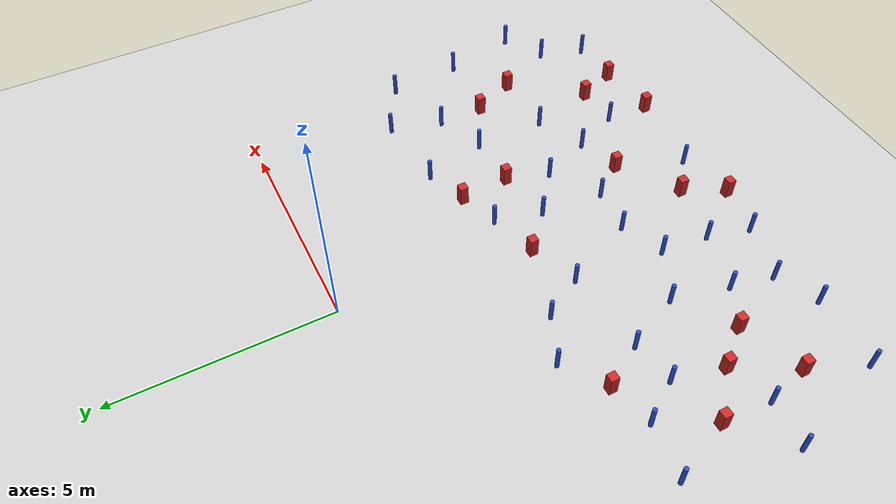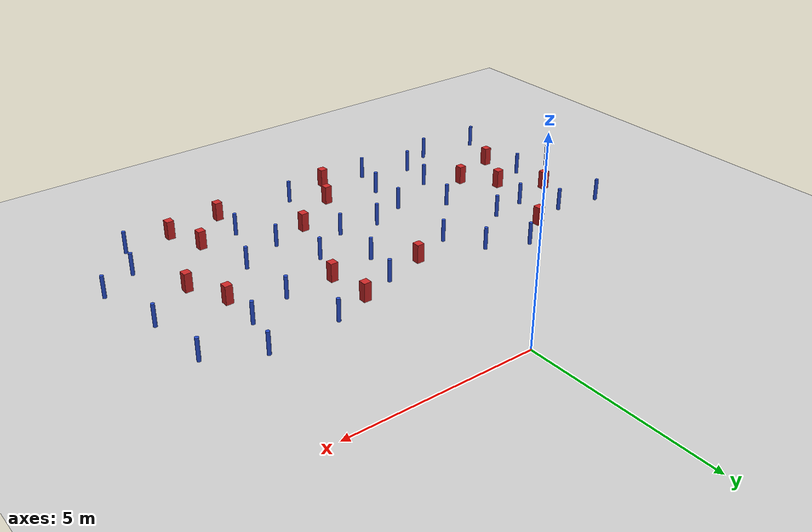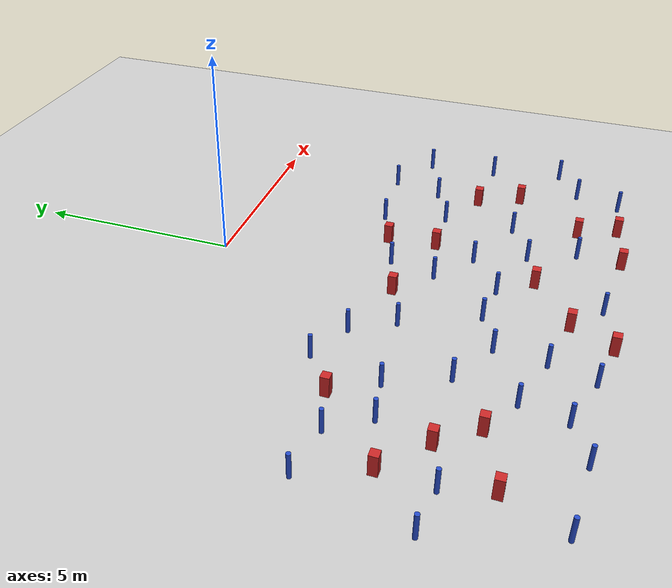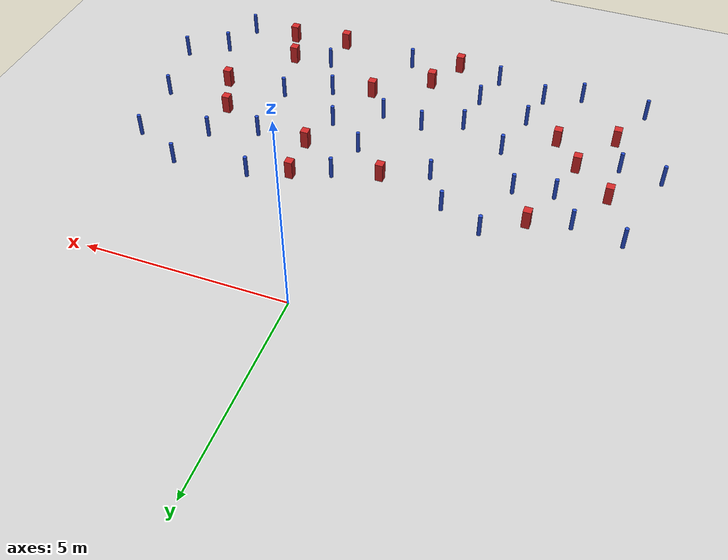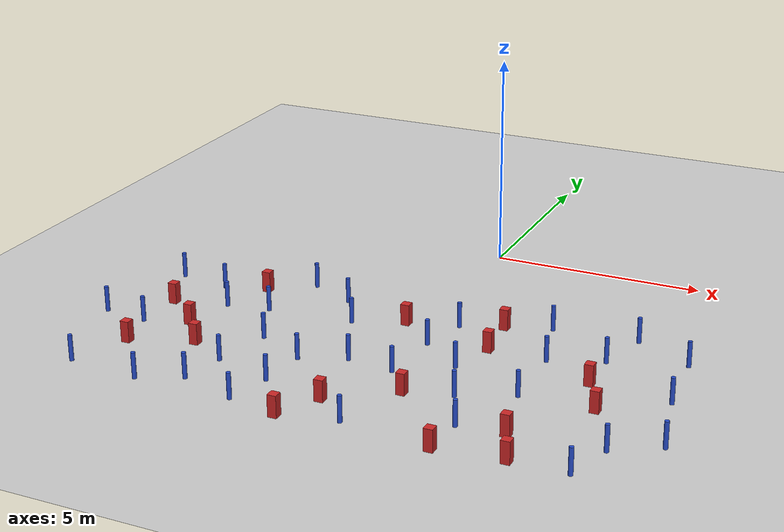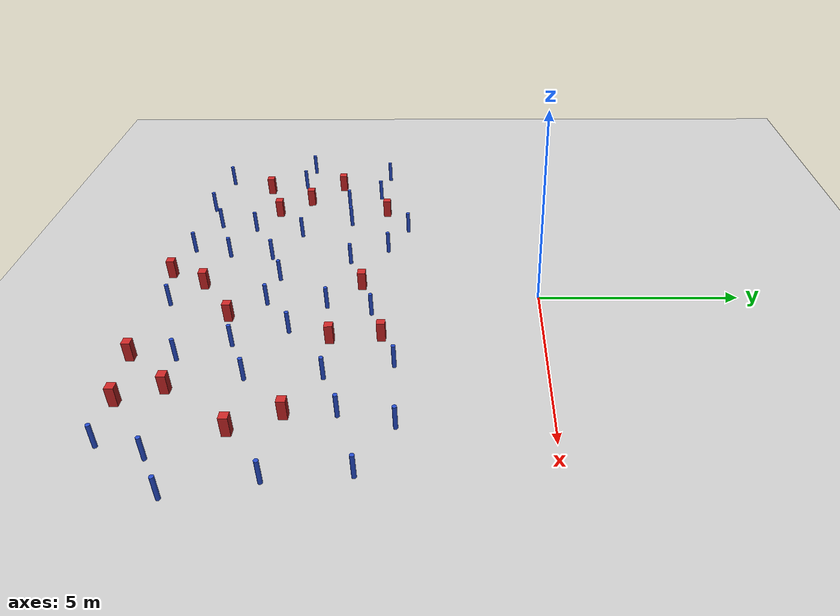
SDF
<sdf version="1.6">
 <world name="default">
  <model name="ground_plane">
   <static>1</static>
   <link name="link">
    <collision name="collision">
     <geometry><plane><normal>0 0 1</normal><size>100 100</size></plane></geometry>
     <surface><friction><ode><mu>100</mu><mu2>50</mu2></ode></friction></surface>
    </collision>
    <visual name="visual">
     <cast_shadows>0</cast_shadows>
     <geometry><plane><normal>0 0 1</normal><size>100 100</size></plane></geometry>
     <material>
      <ambient>1 1 1 1</ambient>
      <diffuse>0.8 0.8 0.8 1</diffuse>
      <specular>0.01 0.01 0.01 1</specular>
     </material>
    </visual>
   </link>
  </model>
  <model name="pole_obstacle0">
   <static>0</static>
   <link name="link">
    <pose>0 0 0.3 0 -0 0</pose>
    <inertial>
     <mass>1</mass>
     <inertia><ixx>0.145833</ixx><ixy>0</ixy><ixz>0</ixz><iyy>0.145833</iyy><iyz>0</iyz><izz>0.125</izz></inertia>
    </inertial>
    <collision name="collision">
     <geometry><cylinder><radius>0.05</radius><length>0.6</length></cylinder></geometry>
    </collision>
    <visual name="visual">
     <geometry><cylinder><radius>0.05</radius><length>0.6</length></cylinder></geometry>
     <material>
      <script><name>Gazebo/Blue</name><uri>file://media/materials/scripts/gazebo.material</uri></script>
     </material>
    </visual>
   </link>
   <pose>-0.847177 -6.63387 -7e-06 0 -0 1e-05</pose>
  </model>
  <model name="pole_obstacle1">
   <static>0</static>
   <link name="link">
    <pose>0 0 0.3 0 -0 0</pose>
    <inertial>
     <mass>1</mass>
     <inertia><ixx>0.145833</ixx><ixy>0</ixy><ixz>0</ixz><iyy>0.145833</iyy><iyz>0</iyz><izz>0.125</izz></inertia>
    </inertial>
    <collision name="collision">
     <geometry><cylinder><radius>0.05</radius><length>0.6</length></cylinder></geometry>
    </collision>
    <visual name="visual">
     <geometry><cylinder><radius>0.05</radius><length>0.6</length></cylinder></geometry>
     <material>
      <script><name>Gazebo/Blue</name><uri>file://media/materials/scripts/gazebo.material</uri></script>
     </material>
    </visual>
   </link>
   <pose>5.36775 -8.12371 -6e-06 0 -0 3e-06</pose>
  </model>
  <model name="square_post_obstacle3">
   <static>0</static>
   <link name="link">
    <pose>0 0 0.25 0 -0 0</pose>
    <inertial>
     <mass>100</mass>
     <inertia>
      <ixx>0.166667</ixx>
      <ixy>0</ixy>
      <ixz>0</ixz>
      <iyy>0.166667</iyy>
      <iyz>0</iyz>
      <izz>0.166667</izz>
     </inertia>
    </inertial>
    <collision name="collision"><geometry><box><size>0.2 0.2 0.5</size></box></geometry></collision>
    <visual name="visual">
     <geometry><box><size>0.2 0.2 0.5</size></box></geometry>
     <material>
      <script><name>Gazebo/Red</name><uri>file://media/materials/scripts/gazebo.material</uri></script>
     </material>
    </visual>
   </link>
   <pose>-5.67275 -7.77645 0 -5e-06 -0 0.000241</pose>
  </model>
  <model name="pole_obstacle3">
   <static>0</static>
   <link name="link">
    <pose>0 0 0.3 0 -0 0</pose>
    <inertial>
     <mass>1</mass>
     <inertia><ixx>0.145833</ixx><ixy>0</ixy><ixz>0</ixz><iyy>0.145833</iyy><iyz>0</iyz><izz>0.125</izz></inertia>
    </inertial>
    <collision name="collision">
     <geometry><cylinder><radius>0.05</radius><length>0.6</length></cylinder></geometry>
    </collision>
    <visual name="visual">
     <geometry><cylinder><radius>0.05</radius><length>0.6</length></cylinder></geometry>
     <material>
      <script><name>Gazebo/Blue</name><uri>file://media/materials/scripts/gazebo.material</uri></script>
     </material>
    </visual>
   </link>
   <pose>-4.64776 -5.25846 -1e-06 -0 -1e-06 7e-06</pose>
  </model>
  <model name="square_post_obstacle4">
   <static>0</static>
   <link name="link">
    <pose>0 0 0.25 0 -0 0</pose>
    <inertial>
     <mass>100</mass>
     <inertia>
      <ixx>0.166667</ixx>
      <ixy>0</ixy>
      <ixz>0</ixz>
      <iyy>0.166667</iyy>
      <iyz>0</iyz>
      <izz>0.166667</izz>
     </inertia>
    </inertial>
    <collision name="collision"><geometry><box><size>0.2 0.2 0.5</size></box></geometry></collision>
    <visual name="visual">
     <geometry><box><size>0.2 0.2 0.5</size></box></geometry>
     <material>
      <script><name>Gazebo/Red</name><uri>file://media/materials/scripts/gazebo.material</uri></script>
     </material>
    </visual>
   </link>
   <pose>-4.25915 -7.26195 0 -5e-06 -0 0.000241</pose>
  </model>
  <model name="square_post_obstacle6">
   <static>0</static>
   <link name="link">
    <pose>0 0 0.25 0 -0 0</pose>
    <inertial>
     <mass>100</mass>
     <inertia>
      <ixx>0.166667</ixx>
      <ixy>0</ixy>
      <ixz>0</ixz>
      <iyy>0.166667</iyy>
      <iyz>0</iyz>
      <izz>0.166667</izz>
     </inertia>
    </inertial>
    <collision name="collision"><geometry><box><size>0.2 0.2 0.5</size></box></geometry></collision>
    <visual name="visual">
     <geometry><box><size>0.2 0.2 0.5</size></box></geometry>
     <material>
      <script><name>Gazebo/Red</name><uri>file://media/materials/scripts/gazebo.material</uri></script>
     </material>
    </visual>
   </link>
   <pose>3.40714 -8.30701 0 -5e-06 -0 0.000241</pose>
  </model>
  <model name="square_post_obstacle7">
   <static>0</static>
   <link name="link">
    <pose>0 0 0.25 0 -0 0</pose>
    <inertial>
     <mass>100</mass>
     <inertia>
      <ixx>0.166667</ixx>
      <ixy>0</ixy>
      <ixz>0</ixz>
      <iyy>0.166667</iyy>
      <iyz>0</iyz>
      <izz>0.166667</izz>
     </inertia>
    </inertial>
    <collision name="collision"><geometry><box><size>0.2 0.2 0.5</size></box></geometry></collision>
    <visual name="visual">
     <geometry><box><size>0.2 0.2 0.5</size></box></geometry>
     <material>
      <script><name>Gazebo/Red</name><uri>file://media/materials/scripts/gazebo.material</uri></script>
     </material>
    </visual>
   </link>
   <pose>-5.86758 -5.58678 0 -5e-06 -0 0.000241</pose>
  </model>
  <model name="square_post_obstacle10">
   <static>0</static>
   <link name="link">
    <pose>0 0 0.25 0 -0 0</pose>
    <inertial>
     <mass>100</mass>
     <inertia>
      <ixx>0.166667</ixx>
      <ixy>0</ixy>
      <ixz>0</ixz>
      <iyy>0.166667</iyy>
      <iyz>0</iyz>
      <izz>0.166667</izz>
     </inertia>
    </inertial>
    <collision name="collision"><geometry><box><size>0.2 0.2 0.5</size></box></geometry></collision>
    <visual name="visual">
     <geometry><box><size>0.2 0.2 0.5</size></box></geometry>
     <material>
      <script><name>Gazebo/Red</name><uri>file://media/materials/scripts/gazebo.material</uri></script>
     </material>
    </visual>
   </link>
   <pose>1.6105 -3.80443 0 -5e-06 -0 0.000241</pose>
  </model>
  <model name="pole_obstacle16">
   <static>0</static>
   <link name="link">
    <pose>0 0 0.3 0 -0 0</pose>
    <inertial>
     <mass>1</mass>
     <inertia><ixx>0.145833</ixx><ixy>0</ixy><ixz>0</ixz><iyy>0.145833</iyy><iyz>0</iyz><izz>0.125</izz></inertia>
    </inertial>
    <collision name="collision">
     <geometry><cylinder><radius>0.05</radius><length>0.6</length></cylinder></geometry>
    </collision>
    <visual name="visual">
     <geometry><cylinder><radius>0.05</radius><length>0.6</length></cylinder></geometry>
     <material>
      <script><name>Gazebo/Blue</name><uri>file://media/materials/scripts/gazebo.material</uri></script>
     </material>
    </visual>
   </link>
   <pose>-3.65186 -5.09282 -2e-06 -1e-06 -0 1.1e-05</pose>
  </model>
  <model name="pole_obstacle18">
   <static>0</static>
   <link name="link">
    <pose>0 0 0.3 0 -0 0</pose>
    <inertial>
     <mass>1</mass>
     <inertia><ixx>0.145833</ixx><ixy>0</ixy><ixz>0</ixz><iyy>0.145833</iyy><iyz>0</iyz><izz>0.125</izz></inertia>
    </inertial>
    <collision name="collision">
     <geometry><cylinder><radius>0.05</radius><length>0.6</length></cylinder></geometry>
    </collision>
    <visual name="visual">
     <geometry><cylinder><radius>0.05</radius><length>0.6</length></cylinder></geometry>
     <material>
      <script><name>Gazebo/Blue</name><uri>file://media/materials/scripts/gazebo.material</uri></script>
     </material>
    </visual>
   </link>
   <pose>4.19335 -4.50781 -1e-06 -0 -1e-06 7e-06</pose>
  </model>
  <model name="pole_obstacle21">
   <static>0</static>
   <link name="link">
    <pose>0 0 0.3 0 -0 0</pose>
    <inertial>
     <mass>1</mass>
     <inertia><ixx>0.145833</ixx><ixy>0</ixy><ixz>0</ixz><iyy>0.145833</iyy><iyz>0</iyz><izz>0.125</izz></inertia>
    </inertial>
    <collision name="collision">
     <geometry><cylinder><radius>0.05</radius><length>0.6</length></cylinder></geometry>
    </collision>
    <visual name="visual">
     <geometry><cylinder><radius>0.05</radius><length>0.6</length></cylinder></geometry>
     <material>
      <script><name>Gazebo/Blue</name><uri>file://media/materials/scripts/gazebo.material</uri></script>
     </material>
    </visual>
   </link>
   <pose>-3.0335 -6.41624 -2e-06 -1e-06 -0 1.1e-05</pose>
  </model>
  <model name="square_post_obstacle16">
   <static>0</static>
   <link name="link">
    <pose>0 0 0.25 0 -0 0</pose>
    <inertial>
     <mass>100</mass>
     <inertia>
      <ixx>0.166667</ixx>
      <ixy>0</ixy>
      <ixz>0</ixz>
      <iyy>0.166667</iyy>
      <iyz>0</iyz>
      <izz>0.166667</izz>
     </inertia>
    </inertial>
    <collision name="collision"><geometry><box><size>0.2 0.2 0.5</size></box></geometry></collision>
    <visual name="visual">
     <geometry><box><size>0.2 0.2 0.5</size></box></geometry>
     <material>
      <script><name>Gazebo/Red</name><uri>file://media/materials/scripts/gazebo.material</uri></script>
     </material>
    </visual>
   </link>
   <pose>-0.538981 -8.50106 0 -5e-06 -0 0.000241</pose>
  </model>
  <model name="pole_obstacle22">
   <static>0</static>
   <link name="link">
    <pose>0 0 0.3 0 -0 0</pose>
    <inertial>
     <mass>1</mass>
     <inertia><ixx>0.145833</ixx><ixy>0</ixy><ixz>0</ixz><iyy>0.145833</iyy><iyz>0</iyz><izz>0.125</izz></inertia>
    </inertial>
    <collision name="collision">
     <geometry><cylinder><radius>0.05</radius><length>0.6</length></cylinder></geometry>
    </collision>
    <visual name="visual">
     <geometry><cylinder><radius>0.05</radius><length>0.6</length></cylinder></geometry>
     <material>
      <script><name>Gazebo/Blue</name><uri>file://media/materials/scripts/gazebo.material</uri></script>
     </material>
    </visual>
   </link>
   <pose>-6.99557 -6.62597 -1e-06 -0 -1e-06 7e-06</pose>
  </model>
  <model name="square_post_obstacle18">
   <static>0</static>
   <link name="link">
    <pose>0 0 0.25 0 -0 0</pose>
    <inertial>
     <mass>100</mass>
     <inertia>
      <ixx>0.166667</ixx>
      <ixy>0</ixy>
      <ixz>0</ixz>
      <iyy>0.166667</iyy>
      <iyz>0</iyz>
      <izz>0.166667</izz>
     </inertia>
    </inertial>
    <collision name="collision"><geometry><box><size>0.2 0.2 0.5</size></box></geometry></collision>
    <visual name="visual">
     <geometry><box><size>0.2 0.2 0.5</size></box></geometry>
     <material>
      <script><name>Gazebo/Red</name><uri>file://media/materials/scripts/gazebo.material</uri></script>
     </material>
    </visual>
   </link>
   <pose>4.66731 -6.67754 0 -5e-06 -0 0.000241</pose>
  </model>
  <model name="square_post_obstacle20">
   <static>0</static>
   <link name="link">
    <pose>0 0 0.25 0 -0 0</pose>
    <inertial>
     <mass>100</mass>
     <inertia>
      <ixx>0.166667</ixx>
      <ixy>0</ixy>
      <ixz>0</ixz>
      <iyy>0.166667</iyy>
      <iyz>0</iyz>
      <izz>0.166667</izz>
     </inertia>
    </inertial>
    <collision name="collision"><geometry><box><size>0.2 0.2 0.5</size></box></geometry></collision>
    <visual name="visual">
     <geometry><box><size>0.2 0.2 0.5</size></box></geometry>
     <material>
      <script><name>Gazebo/Red</name><uri>file://media/materials/scripts/gazebo.material</uri></script>
     </material>
    </visual>
   </link>
   <pose>-0.489919 -4.46962 0 -5e-06 -0 0.000241</pose>
  </model>
  <model name="pole_obstacle25">
   <static>0</static>
   <link name="link">
    <pose>0 0 0.3 0 -0 0</pose>
    <inertial>
     <mass>1</mass>
     <inertia><ixx>0.145833</ixx><ixy>0</ixy><ixz>0</ixz><iyy>0.145833</iyy><iyz>0</iyz><izz>0.125</izz></inertia>
    </inertial>
    <collision name="collision">
     <geometry><cylinder><radius>0.05</radius><length>0.6</length></cylinder></geometry>
    </collision>
    <visual name="visual">
     <geometry><cylinder><radius>0.05</radius><length>0.6</length></cylinder></geometry>
     <material>
      <script><name>Gazebo/Blue</name><uri>file://media/materials/scripts/gazebo.material</uri></script>
     </material>
    </visual>
   </link>
   <pose>3.03689 -6.71455 -2e-06 -1e-06 -0 9e-06</pose>
  </model>
  <model name="pole_obstacle28">
   <static>0</static>
   <link name="link">
    <pose>0 0 0.3 0 -0 0</pose>
    <inertial>
     <mass>1</mass>
     <inertia><ixx>0.145833</ixx><ixy>0</ixy><ixz>0</ixz><iyy>0.145833</iyy><iyz>0</iyz><izz>0.125</izz></inertia>
    </inertial>
    <collision name="collision">
     <geometry><cylinder><radius>0.05</radius><length>0.6</length></cylinder></geometry>
    </collision>
    <visual name="visual">
     <geometry><cylinder><radius>0.05</radius><length>0.6</length></cylinder></geometry>
     <material>
      <script><name>Gazebo/Blue</name><uri>file://media/materials/scripts/gazebo.material</uri></script>
     </material>
    </visual>
   </link>
   <pose>-6.4692 -4.19105 -1e-06 -0 -1e-06 7e-06</pose>
  </model>
  <model name="pole_obstacle30">
   <static>0</static>
   <link name="link">
    <pose>0 0 0.3 0 -0 0</pose>
    <inertial>
     <mass>1</mass>
     <inertia><ixx>0.145833</ixx><ixy>0</ixy><ixz>0</ixz><iyy>0.145833</iyy><iyz>0</iyz><izz>0.125</izz></inertia>
    </inertial>
    <collision name="collision">
     <geometry><cylinder><radius>0.05</radius><length>0.6</length></cylinder></geometry>
    </collision>
    <visual name="visual">
     <geometry><cylinder><radius>0.05</radius><length>0.6</length></cylinder></geometry>
     <material>
      <script><name>Gazebo/Blue</name><uri>file://media/materials/scripts/gazebo.material</uri></script>
     </material>
    </visual>
   </link>
   <pose>-4.51131 -9.22938 -6e-06 0 -0 1e-06</pose>
  </model>
  <model name="pole_obstacle31">
   <static>0</static>
   <link name="link">
    <pose>0 0 0.3 0 -0 0</pose>
    <inertial>
     <mass>1</mass>
     <inertia><ixx>0.145833</ixx><ixy>0</ixy><ixz>0</ixz><iyy>0.145833</iyy><iyz>0</iyz><izz>0.125</izz></inertia>
    </inertial>
    <collision name="collision">
     <geometry><cylinder><radius>0.05</radius><length>0.6</length></cylinder></geometry>
    </collision>
    <visual name="visual">
     <geometry><cylinder><radius>0.05</radius><length>0.6</length></cylinder></geometry>
     <material>
      <script><name>Gazebo/Blue</name><uri>file://media/materials/scripts/gazebo.material</uri></script>
     </material>
    </visual>
   </link>
   <pose>-2.21514 -3.93363 -1e-06 -1e-06 0 8e-06</pose>
  </model>
  <model name="pole_obstacle33">
   <static>0</static>
   <link name="link">
    <pose>0 0 0.3 0 -0 0</pose>
    <inertial>
     <mass>1</mass>
     <inertia><ixx>0.145833</ixx><ixy>0</ixy><ixz>0</ixz><iyy>0.145833</iyy><iyz>0</iyz><izz>0.125</izz></inertia>
    </inertial>
    <collision name="collision">
     <geometry><cylinder><radius>0.05</radius><length>0.6</length></cylinder></geometry>
    </collision>
    <visual name="visual">
     <geometry><cylinder><radius>0.05</radius><length>0.6</length></cylinder></geometry>
     <material>
      <script><name>Gazebo/Blue</name><uri>file://media/materials/scripts/gazebo.material</uri></script>
     </material>
    </visual>
   </link>
   <pose>1.36237 -6.02095 -1e-06 -0 1e-06 1.1e-05</pose>
  </model>
  <model name="pole_obstacle40">
   <static>0</static>
   <link name="link">
    <pose>0 0 0.3 0 -0 0</pose>
    <inertial>
     <mass>1</mass>
     <inertia><ixx>0.145833</ixx><ixy>0</ixy><ixz>0</ixz><iyy>0.145833</iyy><iyz>0</iyz><izz>0.125</izz></inertia>
    </inertial>
    <collision name="collision">
     <geometry><cylinder><radius>0.05</radius><length>0.6</length></cylinder></geometry>
    </collision>
    <visual name="visual">
     <geometry><cylinder><radius>0.05</radius><length>0.6</length></cylinder></geometry>
     <material>
      <script><name>Gazebo/Blue</name><uri>file://media/materials/scripts/gazebo.material</uri></script>
     </material>
    </visual>
   </link>
   <pose>-3.28085 -3.44801 -1e-06 -1e-06 0 8e-06</pose>
  </model>
  <model name="pole_obstacle42">
   <static>0</static>
   <link name="link">
    <pose>0 0 0.3 0 -0 0</pose>
    <inertial>
     <mass>1</mass>
     <inertia><ixx>0.145833</ixx><ixy>0</ixy><ixz>0</ixz><iyy>0.145833</iyy><iyz>0</iyz><izz>0.125</izz></inertia>
    </inertial>
    <collision name="collision">
     <geometry><cylinder><radius>0.05</radius><length>0.6</length></cylinder></geometry>
    </collision>
    <visual name="visual">
     <geometry><cylinder><radius>0.05</radius><length>0.6</length></cylinder></geometry>
     <material>
      <script><name>Gazebo/Blue</name><uri>file://media/materials/scripts/gazebo.material</uri></script>
     </material>
    </visual>
   </link>
   <pose>-1.86152 -7.03844 -7e-06 -1e-06 -1e-06 1e-05</pose>
  </model>
  <model name="pole_obstacle44">
   <static>0</static>
   <link name="link">
    <pose>0 0 0.3 0 -0 0</pose>
    <inertial>
     <mass>1</mass>
     <inertia><ixx>0.145833</ixx><ixy>0</ixy><ixz>0</ixz><iyy>0.145833</iyy><iyz>0</iyz><izz>0.125</izz></inertia>
    </inertial>
    <collision name="collision">
     <geometry><cylinder><radius>0.05</radius><length>0.6</length></cylinder></geometry>
    </collision>
    <visual name="visual">
     <geometry><cylinder><radius>0.05</radius><length>0.6</length></cylinder></geometry>
     <material>
      <script><name>Gazebo/Blue</name><uri>file://media/materials/scripts/gazebo.material</uri></script>
     </material>
    </visual>
   </link>
   <pose>3.01139 -4.96971 -2e-06 -1e-06 -0 9e-06</pose>
  </model>
  <model name="square_post_obstacle35">
   <static>0</static>
   <link name="link">
    <pose>0 0 0.25 0 -0 0</pose>
    <inertial>
     <mass>100</mass>
     <inertia>
      <ixx>0.166667</ixx>
      <ixy>0</ixy>
      <ixz>0</ixz>
      <iyy>0.166667</iyy>
      <iyz>0</iyz>
      <izz>0.166667</izz>
     </inertia>
    </inertial>
    <collision name="collision"><geometry><box><size>0.2 0.2 0.5</size></box></geometry></collision>
    <visual name="visual">
     <geometry><box><size>0.2 0.2 0.5</size></box></geometry>
     <material>
      <script><name>Gazebo/Red</name><uri>file://media/materials/scripts/gazebo.material</uri></script>
     </material>
    </visual>
   </link>
   <pose>-4.92042 -6.43247 0 -5e-06 -0 0.000241</pose>
  </model>
  <model name="pole_obstacle45">
   <static>0</static>
   <link name="link">
    <pose>0 0 0.3 0 -0 0</pose>
    <inertial>
     <mass>1</mass>
     <inertia><ixx>0.145833</ixx><ixy>0</ixy><ixz>0</ixz><iyy>0.145833</iyy><iyz>0</iyz><izz>0.125</izz></inertia>
    </inertial>
    <collision name="collision">
     <geometry><cylinder><radius>0.05</radius><length>0.6</length></cylinder></geometry>
    </collision>
    <visual name="visual">
     <geometry><cylinder><radius>0.05</radius><length>0.6</length></cylinder></geometry>
     <material>
      <script><name>Gazebo/Blue</name><uri>file://media/materials/scripts/gazebo.material</uri></script>
     </material>
    </visual>
   </link>
   <pose>-2.24147 -9.20842 -3e-06 0 -0 9e-06</pose>
  </model>
  <model name="pole_obstacle48">
   <static>0</static>
   <link name="link">
    <pose>0 0 0.3 0 -0 0</pose>
    <inertial>
     <mass>1</mass>
     <inertia><ixx>0.145833</ixx><ixy>0</ixy><ixz>0</ixz><iyy>0.145833</iyy><iyz>0</iyz><izz>0.125</izz></inertia>
    </inertial>
    <collision name="collision">
     <geometry><cylinder><radius>0.05</radius><length>0.6</length></cylinder></geometry>
    </collision>
    <visual name="visual">
     <geometry><cylinder><radius>0.05</radius><length>0.6</length></cylinder></geometry>
     <material>
      <script><name>Gazebo/Blue</name><uri>file://media/materials/scripts/gazebo.material</uri></script>
     </material>
    </visual>
   </link>
   <pose>-1.64327 -4.89795 -2e-06 0 -1e-06 1e-05</pose>
  </model>
  <model name="pole_obstacle50">
   <static>0</static>
   <link name="link">
    <pose>0 0 0.3 0 -0 0</pose>
    <inertial>
     <mass>1</mass>
     <inertia><ixx>0.145833</ixx><ixy>0</ixy><ixz>0</ixz><iyy>0.145833</iyy><iyz>0</iyz><izz>0.125</izz></inertia>
    </inertial>
    <collision name="collision">
     <geometry><cylinder><radius>0.05</radius><length>0.6</length></cylinder></geometry>
    </collision>
    <visual name="visual">
     <geometry><cylinder><radius>0.05</radius><length>0.6</length></cylinder></geometry>
     <material>
      <script><name>Gazebo/Blue</name><uri>file://media/materials/scripts/gazebo.material</uri></script>
     </material>
    </visual>
   </link>
   <pose>-6.20833 -9.07261 -6e-06 0 -0 1e-06</pose>
  </model>
  <model name="square_post_obstacle38">
   <static>0</static>
   <link name="link">
    <pose>0 0 0.25 0 -0 0</pose>
    <inertial>
     <mass>100</mass>
     <inertia>
      <ixx>0.166667</ixx>
      <ixy>0</ixy>
      <ixz>0</ixz>
      <iyy>0.166667</iyy>
      <iyz>0</iyz>
      <izz>0.166667</izz>
     </inertia>
    </inertial>
    <collision name="collision"><geometry><box><size>0.2 0.2 0.5</size></box></geometry></collision>
    <visual name="visual">
     <geometry><box><size>0.2 0.2 0.5</size></box></geometry>
     <material>
      <script><name>Gazebo/Red</name><uri>file://media/materials/scripts/gazebo.material</uri></script>
     </material>
    </visual>
   </link>
   <pose>2.29659 -9.43703 0 -5e-06 -0 0.000241</pose>
  </model>
  <model name="square_post_obstacle39">
   <static>0</static>
   <link name="link">
    <pose>0 0 0.25 0 -0 0</pose>
    <inertial>
     <mass>100</mass>
     <inertia>
      <ixx>0.166667</ixx>
      <ixy>0</ixy>
      <ixz>0</ixz>
      <iyy>0.166667</iyy>
      <iyz>0</iyz>
      <izz>0.166667</izz>
     </inertia>
    </inertial>
    <collision name="collision"><geometry><box><size>0.2 0.2 0.5</size></box></geometry></collision>
    <visual name="visual">
     <geometry><box><size>0.2 0.2 0.5</size></box></geometry>
     <material>
      <script><name>Gazebo/Red</name><uri>file://media/materials/scripts/gazebo.material</uri></script>
     </material>
    </visual>
   </link>
   <pose>3.78747 -9.26308 0 -5e-06 -0 0.000241</pose>
  </model>
  <model name="pole_obstacle52">
   <static>0</static>
   <link name="link">
    <pose>0 0 0.3 0 -0 0</pose>
    <inertial>
     <mass>1</mass>
     <inertia><ixx>0.145833</ixx><ixy>0</ixy><ixz>0</ixz><iyy>0.145833</iyy><iyz>0</iyz><izz>0.125</izz></inertia>
    </inertial>
    <collision name="collision">
     <geometry><cylinder><radius>0.05</radius><length>0.6</length></cylinder></geometry>
    </collision>
    <visual name="visual">
     <geometry><cylinder><radius>0.05</radius><length>0.6</length></cylinder></geometry>
     <material>
      <script><name>Gazebo/Blue</name><uri>file://media/materials/scripts/gazebo.material</uri></script>
     </material>
    </visual>
   </link>
   <pose>5.83845 -3.97373 -2e-06 -1e-06 -0 9e-06</pose>
  </model>
  <model name="pole_obstacle54">
   <static>0</static>
   <link name="link">
    <pose>0 0 0.3 0 -0 0</pose>
    <inertial>
     <mass>1</mass>
     <inertia><ixx>0.145833</ixx><ixy>0</ixy><ixz>0</ixz><iyy>0.145833</iyy><iyz>0</iyz><izz>0.125</izz></inertia>
    </inertial>
    <collision name="collision">
     <geometry><cylinder><radius>0.05</radius><length>0.6</length></cylinder></geometry>
    </collision>
    <visual name="visual">
     <geometry><cylinder><radius>0.05</radius><length>0.6</length></cylinder></geometry>
     <material>
      <script><name>Gazebo/Blue</name><uri>file://media/materials/scripts/gazebo.material</uri></script>
     </material>
    </visual>
   </link>
   <pose>1.86044 -7.24845 -7e-06 -1e-06 -1e-06 1e-05</pose>
  </model>
  <model name="pole_obstacle58">
   <static>0</static>
   <link name="link">
    <pose>0 0 0.3 0 -0 0</pose>
    <inertial>
     <mass>1</mass>
     <inertia><ixx>0.145833</ixx><ixy>0</ixy><ixz>0</ixz><iyy>0.145833</iyy><iyz>0</iyz><izz>0.125</izz></inertia>
    </inertial>
    <collision name="collision">
     <geometry><cylinder><radius>0.05</radius><length>0.6</length></cylinder></geometry>
    </collision>
    <visual name="visual">
     <geometry><cylinder><radius>0.05</radius><length>0.6</length></cylinder></geometry>
     <material>
      <script><name>Gazebo/Blue</name><uri>file://media/materials/scripts/gazebo.material</uri></script>
     </material>
    </visual>
   </link>
   <pose>-3.34427 -7.77642 -2e-06 -1e-06 -0 1.1e-05</pose>
  </model>
  <model name="pole_obstacle59">
   <static>0</static>
   <link name="link">
    <pose>0 0 0.3 0 -0 0</pose>
    <inertial>
     <mass>1</mass>
     <inertia><ixx>0.145833</ixx><ixy>0</ixy><ixz>0</ixz><iyy>0.145833</iyy><iyz>0</iyz><izz>0.125</izz></inertia>
    </inertial>
    <collision name="collision">
     <geometry><cylinder><radius>0.05</radius><length>0.6</length></cylinder></geometry>
    </collision>
    <visual name="visual">
     <geometry><cylinder><radius>0.05</radius><length>0.6</length></cylinder></geometry>
     <material>
      <script><name>Gazebo/Blue</name><uri>file://media/materials/scripts/gazebo.material</uri></script>
     </material>
    </visual>
   </link>
   <pose>0.373557 -5.25192 -3e-06 -1e-06 0 8e-06</pose>
  </model>
  <model name="pole_obstacle60">
   <static>0</static>
   <link name="link">
    <pose>0 0 0.3 0 -0 0</pose>
    <inertial>
     <mass>1</mass>
     <inertia><ixx>0.145833</ixx><ixy>0</ixy><ixz>0</ixz><iyy>0.145833</iyy><iyz>0</iyz><izz>0.125</izz></inertia>
    </inertial>
    <collision name="collision">
     <geometry><cylinder><radius>0.05</radius><length>0.6</length></cylinder></geometry>
    </collision>
    <visual name="visual">
     <geometry><cylinder><radius>0.05</radius><length>0.6</length></cylinder></geometry>
     <material>
      <script><name>Gazebo/Blue</name><uri>file://media/materials/scripts/gazebo.material</uri></script>
     </material>
    </visual>
   </link>
   <pose>5.96877 -5.73649 -3e-06 -1e-06 -0 1e-06</pose>
  </model>
  <model name="pole_obstacle64">
   <static>0</static>
   <link name="link">
    <pose>0 0 0.3 0 -0 0</pose>
    <inertial>
     <mass>1</mass>
     <inertia><ixx>0.145833</ixx><ixy>0</ixy><ixz>0</ixz><iyy>0.145833</iyy><iyz>0</iyz><izz>0.125</izz></inertia>
    </inertial>
    <collision name="collision">
     <geometry><cylinder><radius>0.05</radius><length>0.6</length></cylinder></geometry>
    </collision>
    <visual name="visual">
     <geometry><cylinder><radius>0.05</radius><length>0.6</length></cylinder></geometry>
     <material>
      <script><name>Gazebo/Blue</name><uri>file://media/materials/scripts/gazebo.material</uri></script>
     </material>
    </visual>
   </link>
   <pose>4.53783 -3.2718 -2e-06 0 -0 1e-05</pose>
  </model>
  <model name="square_post_obstacle42">
   <static>0</static>
   <link name="link">
    <pose>0 0 0.25 0 -0 0</pose>
    <inertial>
     <mass>100</mass>
     <inertia>
      <ixx>0.166667</ixx>
      <ixy>0</ixy>
      <ixz>0</ixz>
      <iyy>0.166667</iyy>
      <iyz>0</iyz>
      <izz>0.166667</izz>
     </inertia>
    </inertial>
    <collision name="collision"><geometry><box><size>0.2 0.2 0.5</size></box></geometry></collision>
    <visual name="visual">
     <geometry><box><size>0.2 0.2 0.5</size></box></geometry>
     <material>
      <script><name>Gazebo/Red</name><uri>file://media/materials/scripts/gazebo.material</uri></script>
     </material>
    </visual>
   </link>
   <pose>-4.22815 -4.11739 0 -5e-06 -0 0.000241</pose>
  </model>
  <model name="pole_obstacle68">
   <static>0</static>
   <link name="link">
    <pose>0 0 0.3 0 -0 0</pose>
    <inertial>
     <mass>1</mass>
     <inertia><ixx>0.145833</ixx><ixy>0</ixy><ixz>0</ixz><iyy>0.145833</iyy><iyz>0</iyz><izz>0.125</izz></inertia>
    </inertial>
    <collision name="collision">
     <geometry><cylinder><radius>0.05</radius><length>0.6</length></cylinder></geometry>
    </collision>
    <visual name="visual">
     <geometry><cylinder><radius>0.05</radius><length>0.6</length></cylinder></geometry>
     <material>
      <script><name>Gazebo/Blue</name><uri>file://media/materials/scripts/gazebo.material</uri></script>
     </material>
    </visual>
   </link>
   <pose>2.61413 -3.43753 -1e-06 1e-06 -1e-06 1e-05</pose>
  </model>
  <model name="square_post_obstacle44">
   <static>0</static>
   <link name="link">
    <pose>0 0 0.25 0 -0 0</pose>
    <inertial>
     <mass>100</mass>
     <inertia>
      <ixx>0.166667</ixx>
      <ixy>0</ixy>
      <ixz>0</ixz>
      <iyy>0.166667</iyy>
      <iyz>0</iyz>
      <izz>0.166667</izz>
     </inertia>
    </inertial>
    <collision name="collision"><geometry><box><size>0.2 0.2 0.5</size></box></geometry></collision>
    <visual name="visual">
     <geometry><box><size>0.2 0.2 0.5</size></box></geometry>
     <material>
      <script><name>Gazebo/Red</name><uri>file://media/materials/scripts/gazebo.material</uri></script>
     </material>
    </visual>
   </link>
   <pose>-1.05967 -9.46597 0 -5e-06 -0 0.000241</pose>
  </model>
  <model name="square_post_obstacle45">
   <static>0</static>
   <link name="link">
    <pose>0 0 0.25 0 -0 0</pose>
    <inertial>
     <mass>100</mass>
     <inertia>
      <ixx>0.166667</ixx>
      <ixy>0</ixy>
      <ixz>0</ixz>
      <iyy>0.166667</iyy>
      <iyz>0</iyz>
      <izz>0.166667</izz>
     </inertia>
    </inertial>
    <collision name="collision"><geometry><box><size>0.2 0.2 0.5</size></box></geometry></collision>
    <visual name="visual">
     <geometry><box><size>0.2 0.2 0.5</size></box></geometry>
     <material>
      <script><name>Gazebo/Red</name><uri>file://media/materials/scripts/gazebo.material</uri></script>
     </material>
    </visual>
   </link>
   <pose>4.19274 -5.6205 0 -5e-06 -0 0.000241</pose>
  </model>
  <model name="pole_obstacle73">
   <static>0</static>
   <link name="link">
    <pose>0 0 0.3 0 -0 0</pose>
    <inertial>
     <mass>1</mass>
     <inertia><ixx>0.145833</ixx><ixy>0</ixy><ixz>0</ixz><iyy>0.145833</iyy><iyz>0</iyz><izz>0.125</izz></inertia>
    </inertial>
    <collision name="collision">
     <geometry><cylinder><radius>0.05</radius><length>0.6</length></cylinder></geometry>
    </collision>
    <visual name="visual">
     <geometry><cylinder><radius>0.05</radius><length>0.6</length></cylinder></geometry>
     <material>
      <script><name>Gazebo/Blue</name><uri>file://media/materials/scripts/gazebo.material</uri></script>
     </material>
    </visual>
   </link>
   <pose>5.03008 -9.21527 -6e-06 1e-06 0 3e-06</pose>
  </model>
  <model name="pole_obstacle74">
   <static>0</static>
   <link name="link">
    <pose>0 0 0.3 0 -0 0</pose>
    <inertial>
     <mass>1</mass>
     <inertia><ixx>0.145833</ixx><ixy>0</ixy><ixz>0</ixz><iyy>0.145833</iyy><iyz>0</iyz><izz>0.125</izz></inertia>
    </inertial>
    <collision name="collision">
     <geometry><cylinder><radius>0.05</radius><length>0.6</length></cylinder></geometry>
    </collision>
    <visual name="visual">
     <geometry><cylinder><radius>0.05</radius><length>0.6</length></cylinder></geometry>
     <material>
      <script><name>Gazebo/Blue</name><uri>file://media/materials/scripts/gazebo.material</uri></script>
     </material>
    </visual>
   </link>
   <pose>2.36846 -8.38937 -2e-06 -1e-06 -0 6e-06</pose>
  </model>
  <model name="pole_obstacle75">
   <static>0</static>
   <link name="link">
    <pose>0 0 0.3 0 -0 0</pose>
    <inertial>
     <mass>1</mass>
     <inertia><ixx>0.145833</ixx><ixy>0</ixy><ixz>0</ixz><iyy>0.145833</iyy><iyz>0</iyz><izz>0.125</izz></inertia>
    </inertial>
    <collision name="collision">
     <geometry><cylinder><radius>0.05</radius><length>0.6</length></cylinder></geometry>
    </collision>
    <visual name="visual">
     <geometry><cylinder><radius>0.05</radius><length>0.6</length></cylinder></geometry>
     <material>
      <script><name>Gazebo/Blue</name><uri>file://media/materials/scripts/gazebo.material</uri></script>
     </material>
    </visual>
   </link>
   <pose>-3.55533 -8.79742 -7e-06 0 -0 7e-06</pose>
  </model>
  <model name="square_post_obstacle52">
   <static>0</static>
   <link name="link">
    <pose>0 0 0.25 0 -0 0</pose>
    <inertial>
     <mass>100</mass>
     <inertia>
      <ixx>0.166667</ixx>
      <ixy>0</ixy>
      <ixz>0</ixz>
      <iyy>0.166667</iyy>
      <iyz>0</iyz>
      <izz>0.166667</izz>
     </inertia>
    </inertial>
    <collision name="collision"><geometry><box><size>0.2 0.2 0.5</size></box></geometry></collision>
    <visual name="visual">
     <geometry><box><size>0.2 0.2 0.5</size></box></geometry>
     <material>
      <script><name>Gazebo/Red</name><uri>file://media/materials/scripts/gazebo.material</uri></script>
     </material>
    </visual>
   </link>
   <pose>0.835925 -7.56118 0 -5e-06 -0 0.000241</pose>
  </model>
  <model name="pole_obstacle76">
   <static>0</static>
   <link name="link">
    <pose>0 0 0.3 0 -0 0</pose>
    <inertial>
     <mass>1</mass>
     <inertia><ixx>0.145833</ixx><ixy>0</ixy><ixz>0</ixz><iyy>0.145833</iyy><iyz>0</iyz><izz>0.125</izz></inertia>
    </inertial>
    <collision name="collision">
     <geometry><cylinder><radius>0.05</radius><length>0.6</length></cylinder></geometry>
    </collision>
    <visual name="visual">
     <geometry><cylinder><radius>0.05</radius><length>0.6</length></cylinder></geometry>
     <material>
      <script><name>Gazebo/Blue</name><uri>file://media/materials/scripts/gazebo.material</uri></script>
     </material>
    </visual>
   </link>
   <pose>-5.94041 -6.74885 -1e-06 -0 -1e-06 7e-06</pose>
  </model>
  <model name="pole_obstacle79">
   <static>0</static>
   <link name="link">
    <pose>0 0 0.3 0 -0 0</pose>
    <inertial>
     <mass>1</mass>
     <inertia><ixx>0.145833</ixx><ixy>0</ixy><ixz>0</ixz><iyy>0.145833</iyy><iyz>0</iyz><izz>0.125</izz></inertia>
    </inertial>
    <collision name="collision">
     <geometry><cylinder><radius>0.05</radius><length>0.6</length></cylinder></geometry>
    </collision>
    <visual name="visual">
     <geometry><cylinder><radius>0.05</radius><length>0.6</length></cylinder></geometry>
     <material>
      <script><name>Gazebo/Blue</name><uri>file://media/materials/scripts/gazebo.material</uri></script>
     </material>
    </visual>
   </link>
   <pose>6.35026 -7.54557 -3e-06 -1e-06 -0 1e-06</pose>
  </model>
  <model name="pole_obstacle82">
   <static>0</static>
   <link name="link">
    <pose>0 0 0.3 0 -0 0</pose>
    <inertial>
     <mass>1</mass>
     <inertia><ixx>0.145833</ixx><ixy>0</ixy><ixz>0</ixz><iyy>0.145833</iyy><iyz>0</iyz><izz>0.125</izz></inertia>
    </inertial>
    <collision name="collision">
     <geometry><cylinder><radius>0.05</radius><length>0.6</length></cylinder></geometry>
    </collision>
    <visual name="visual">
     <geometry><cylinder><radius>0.05</radius><length>0.6</length></cylinder></geometry>
     <material>
      <script><name>Gazebo/Blue</name><uri>file://media/materials/scripts/gazebo.material</uri></script>
     </material>
    </visual>
   </link>
   <pose>-5.24001 -4.37631 -4e-06 0 -0 1e-06</pose>
  </model>
  <model name="pole_obstacle84">
   <static>0</static>
   <link name="link">
    <pose>0 0 0.3 0 -0 0</pose>
    <inertial>
     <mass>1</mass>
     <inertia><ixx>0.145833</ixx><ixy>0</ixy><ixz>0</ixz><iyy>0.145833</iyy><iyz>0</iyz><izz>0.125</izz></inertia>
    </inertial>
    <collision name="collision">
     <geometry><cylinder><radius>0.05</radius><length>0.6</length></cylinder></geometry>
    </collision>
    <visual name="visual">
     <geometry><cylinder><radius>0.05</radius><length>0.6</length></cylinder></geometry>
     <material>
      <script><name>Gazebo/Blue</name><uri>file://media/materials/scripts/gazebo.material</uri></script>
     </material>
    </visual>
   </link>
   <pose>0.235599 -6.75941 -8e-06 1e-06 -0 7e-06</pose>
  </model>
  <model name="pole_obstacle85">
   <static>0</static>
   <link name="link">
    <pose>0 0 0.3 0 -0 0</pose>
    <inertial>
     <mass>1</mass>
     <inertia><ixx>0.145833</ixx><ixy>0</ixy><ixz>0</ixz><iyy>0.145833</iyy><iyz>0</iyz><izz>0.125</izz></inertia>
    </inertial>
    <collision name="collision">
     <geometry><cylinder><radius>0.05</radius><length>0.6</length></cylinder></geometry>
    </collision>
    <visual name="visual">
     <geometry><cylinder><radius>0.05</radius><length>0.6</length></cylinder></geometry>
     <material>
      <script><name>Gazebo/Blue</name><uri>file://media/materials/scripts/gazebo.material</uri></script>
     </material>
    </visual>
   </link>
   <pose>-1.97168 -8.1905 0 3e-06 -1e-06 1e-05</pose>
  </model>
  <model name="pole_obstacle87">
   <static>0</static>
   <link name="link">
    <pose>0 0 0.3 0 -0 0</pose>
    <inertial>
     <mass>1</mass>
     <inertia><ixx>0.145833</ixx><ixy>0</ixy><ixz>0</ixz><iyy>0.145833</iyy><iyz>0</iyz><izz>0.125</izz></inertia>
    </inertial>
    <collision name="collision">
     <geometry><cylinder><radius>0.05</radius><length>0.6</length></cylinder></geometry>
    </collision>
    <visual name="visual">
     <geometry><cylinder><radius>0.05</radius><length>0.6</length></cylinder></geometry>
     <material>
      <script><name>Gazebo/Blue</name><uri>file://media/materials/scripts/gazebo.material</uri></script>
     </material>
    </visual>
   </link>
   <pose>0.241531 -9.16243 -8e-06 1e-06 -0 8e-06</pose>
  </model>
  <model name="square_post_obstacle59">
   <static>0</static>
   <link name="link">
    <pose>0 0 0.25 0 -0 0</pose>
    <inertial>
     <mass>100</mass>
     <inertia>
      <ixx>0.166667</ixx>
      <ixy>0</ixy>
      <ixz>0</ixz>
      <iyy>0.166667</iyy>
      <iyz>0</iyz>
      <izz>0.166667</izz>
     </inertia>
    </inertial>
    <collision name="collision"><geometry><box><size>0.2 0.2 0.5</size></box></geometry></collision>
    <visual name="visual">
     <geometry><box><size>0.2 0.2 0.5</size></box></geometry>
     <material>
      <script><name>Gazebo/Red</name><uri>file://media/materials/scripts/gazebo.material</uri></script>
     </material>
    </visual>
   </link>
   <pose>1.70019 -5.0038 0 -5e-06 -0 0.000241</pose>
  </model>
  <model name="pole_obstacle89">
   <static>0</static>
   <link name="link">
    <pose>0 0 0.3 0 -0 0</pose>
    <inertial>
     <mass>1</mass>
     <inertia><ixx>0.145833</ixx><ixy>0</ixy><ixz>0</ixz><iyy>0.145833</iyy><iyz>0</iyz><izz>0.125</izz></inertia>
    </inertial>
    <collision name="collision">
     <geometry><cylinder><radius>0.05</radius><length>0.6</length></cylinder></geometry>
    </collision>
    <visual name="visual">
     <geometry><cylinder><radius>0.05</radius><length>0.6</length></cylinder></geometry>
     <material>
      <script><name>Gazebo/Blue</name><uri>file://media/materials/scripts/gazebo.material</uri></script>
     </material>
    </visual>
   </link>
   <pose>0.65467 -4.13095 -7e-06 0 -0 1e-05</pose>
  </model>
 </world>
</sdf>
